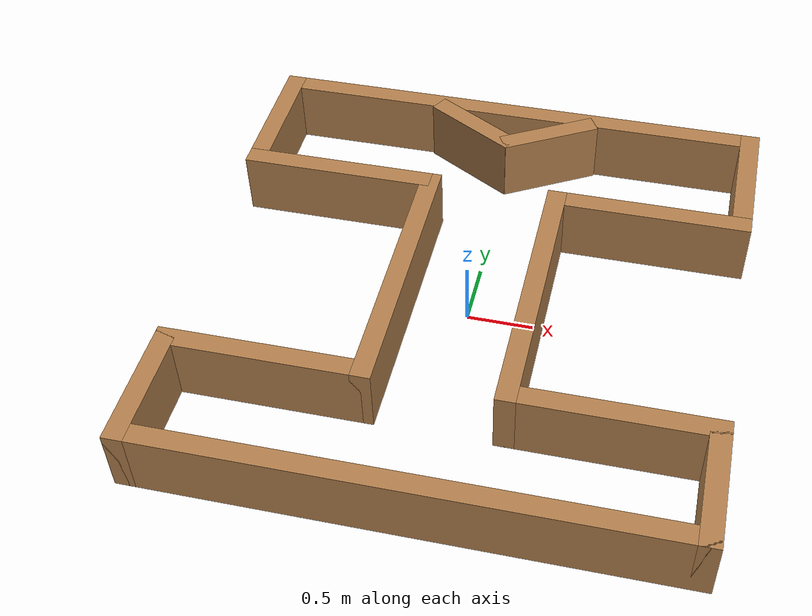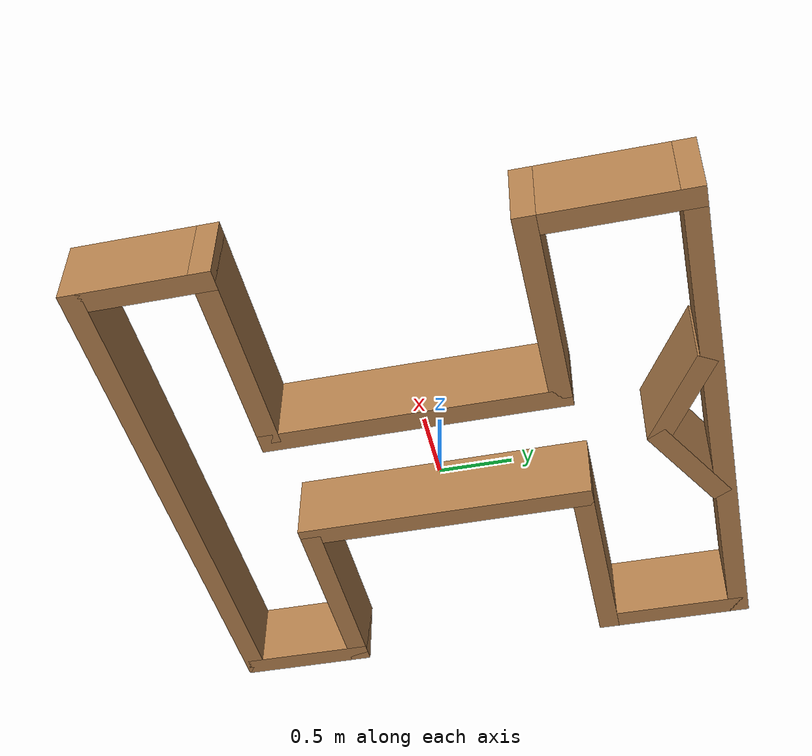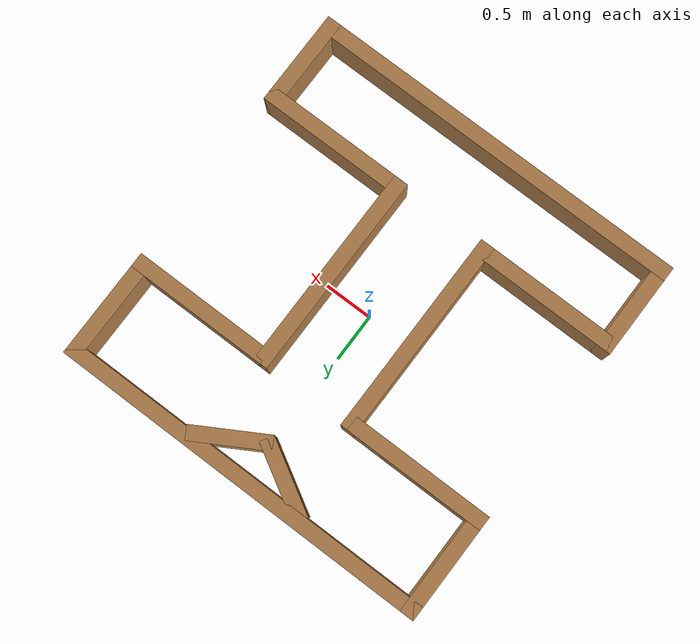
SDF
<?xml version='1.0'?>
<sdf version='1.6'>
  <model name='left_right_turn'>
    <pose frame=''>0 0 0 0 -0 0</pose>
    <link name='Wall_0'>
      <collision name='Wall_0_Collision'>
        <geometry>
          <box>
            <size>4 0.15 0.5</size>
          </box>
        </geometry>
        <pose frame=''>0 0 0.25 0 -0 0</pose>
      </collision>
      <visual name='Wall_0_Visual'>
        <pose frame=''>0 0 0.25 0 -0 0</pose>
        <geometry>
          <box>
            <size>4 0.15 0.5</size>
          </box>
        </geometry>
        <material>
          <script>
            <uri>file://media/materials/scripts/gazebo.material</uri>
            <name>Gazebo/Wood</name>
          </script>
          <ambient>1 1 1 1</ambient>
        </material>
      </visual>
      <pose frame=''>0 1.925 0 0 -0 0</pose>
    </link>
    <link name='Wall_2'>
      <collision name='Wall_2_Collision'>
        <geometry>
          <box>
            <size>1 0.15 0.5</size>
          </box>
        </geometry>
        <pose frame=''>0 0 0.25 0 -0 0</pose>
      </collision>
      <visual name='Wall_2_Visual'>
        <pose frame=''>0 0 0.25 0 -0 0</pose>
        <geometry>
          <box>
            <size>1 0.15 0.5</size>
          </box>
        </geometry>
        <material>
          <script>
            <uri>file://media/materials/scripts/gazebo.material</uri>
            <name>Gazebo/Wood</name>
          </script>
          <ambient>1 1 1 1</ambient>
        </material>
      </visual>
      <pose frame=''>-1.925 1.5 0 0 0 -1.5708</pose>
    </link>
    <link name='Wall_3'>
      <collision name='Wall_3_Collision'>
        <geometry>
          <box>
            <size>4 0.15 0.5</size>
          </box>
        </geometry>
        <pose frame=''>0 0 0.25 0 -0 0</pose>
      </collision>
      <visual name='Wall_3_Visual'>
        <pose frame=''>0 0 0.25 0 -0 0</pose>
        <geometry>
          <box>
            <size>4 0.15 0.5</size>
          </box>
        </geometry>
        <material>
          <script>
            <uri>file://media/materials/scripts/gazebo.material</uri>
            <name>Gazebo/Wood</name>
          </script>
          <ambient>1 1 1 1</ambient>
        </material>
      </visual>
      <pose frame=''>0 -1.925 0 0 -0 0</pose>
    </link>
    <link name='Wall_4'>
      <collision name='Wall_4_Collision'>
        <geometry>
          <box>
            <size>1 0.15 0.5</size>
          </box>
        </geometry>
        <pose frame=''>0 0 0.25 0 -0 0</pose>
      </collision>
      <visual name='Wall_4_Visual'>
        <pose frame=''>0 0 0.25 0 -0 0</pose>
        <geometry>
          <box>
            <size>1 0.15 0.5</size>
          </box>
        </geometry>
        <material>
          <script>
            <uri>file://media/materials/scripts/gazebo.material</uri>
            <name>Gazebo/Wood</name>
          </script>
          <ambient>1 1 1 1</ambient>
        </material>
      </visual>
      <pose frame=''>1.925 1.5 0 0 -0 1.5708</pose>
    </link>
    <link name='Wall_5'>
      <collision name='Wall_5_Collision'>
        <geometry>
          <box>
            <size>1 0.15 0.5</size>
          </box>
        </geometry>
        <pose frame=''>0 0 0.25 0 -0 0</pose>
      </collision>
      <visual name='Wall_5_Visual'>
        <pose frame=''>0 0 0.25 0 -0 0</pose>
        <geometry>
          <box>
            <size>1 0.15 0.5</size>
          </box>
        </geometry>
        <material>
          <script>
            <uri>file://media/materials/scripts/gazebo.material</uri>
            <name>Gazebo/Wood</name>
          </script>
          <ambient>1 1 1 1</ambient>
        </material>
      </visual>
      <pose frame=''>-1.925 -1.5 0 0 0 -1.5708</pose>
    </link>
    <link name='Wall_6'>
      <collision name='Wall_6_Collision'>
        <geometry>
          <box>
            <size>1 0.15 0.5</size>
          </box>
        </geometry>
        <pose frame=''>0 0 0.25 0 -0 0</pose>
      </collision>
      <visual name='Wall_6_Visual'>
        <pose frame=''>0 0 0.25 0 -0 0</pose>
        <geometry>
          <box>
            <size>1 0.15 0.5</size>
          </box>
        </geometry>
        <material>
          <script>
            <uri>file://media/materials/scripts/gazebo.material</uri>
            <name>Gazebo/Wood</name>
          </script>
          <ambient>1 1 1 1</ambient>
        </material>
      </visual>
      <pose frame=''>1.925 -1.5 0 0 -0 1.5708</pose>
    </link>
    <link name='Wall_7'>
      <collision name='Wall_7_Collision'>
        <geometry>
          <box>
            <size>1.5 0.15 0.5</size>
          </box>
        </geometry>
        <pose frame=''>0 0 0.25 0 -0 0</pose>
      </collision>
      <visual name='Wall_7_Visual'>
        <pose frame=''>0 0 0.25 0 -0 0</pose>
        <geometry>
          <box>
            <size>1.5 0.15 0.5</size>
          </box>
        </geometry>
        <material>
          <script>
            <uri>file://media/materials/scripts/gazebo.material</uri>
            <name>Gazebo/Wood</name>
          </script>
          <ambient>1 1 1 1</ambient>
        </material>
      </visual>
      <pose frame=''>-1.25 0.925 0 0 -0 0</pose>
    </link>
    <link name='Wall_8'>
      <collision name='Wall_8_Collision'>
        <geometry>
          <box>
            <size>1.5 0.15 0.5</size>
          </box>
        </geometry>
        <pose frame=''>0 0 0.25 0 -0 0</pose>
      </collision>
      <visual name='Wall_8_Visual'>
        <pose frame=''>0 0 0.25 0 -0 0</pose>
        <geometry>
          <box>
            <size>1.5 0.15 0.5</size>
          </box>
        </geometry>
        <material>
          <script>
            <uri>file://media/materials/scripts/gazebo.material</uri>
            <name>Gazebo/Wood</name>
          </script>
          <ambient>1 1 1 1</ambient>
        </material>
      </visual>
      <pose frame=''>1.25 0.925 0 0 -0 0</pose>
    </link>
    <link name='Wall_9'>
      <collision name='Wall_9_Collision'>
        <geometry>
          <box>
            <size>1.5 0.15 0.5</size>
          </box>
        </geometry>
        <pose frame=''>0 0 0.25 0 -0 0</pose>
      </collision>
      <visual name='Wall_9_Visual'>
        <pose frame=''>0 0 0.25 0 -0 0</pose>
        <geometry>
          <box>
            <size>1.5 0.15 0.5</size>
          </box>
        </geometry>
        <material>
          <script>
            <uri>file://media/materials/scripts/gazebo.material</uri>
            <name>Gazebo/Wood</name>
          </script>
          <ambient>1 1 1 1</ambient>
        </material>
      </visual>
      <pose frame=''>-1.25 -1.075 0 0 -0 0</pose>
    </link>
    <link name='Wall_10'>
      <collision name='Wall_10_Collision'>
        <geometry>
          <box>
            <size>1.5 0.15 0.5</size>
          </box>
        </geometry>
        <pose frame=''>0 0 0.25 0 -0 0</pose>
      </collision>
      <visual name='Wall_10_Visual'>
        <pose frame=''>0 0 0.25 0 -0 0</pose>
        <geometry>
          <box>
            <size>1.5 0.15 0.5</size>
          </box>
        </geometry>
        <material>
          <script>
            <uri>file://media/materials/scripts/gazebo.material</uri>
            <name>Gazebo/Wood</name>
          </script>
          <ambient>1 1 1 1</ambient>
        </material>
      </visual>
      <pose frame=''>1.25 -1.075 0 0 -0 0</pose>
    </link>
    <link name='Wall_11'>
      <collision name='Wall_11_Collision'>
        <geometry>
          <box>
            <size>2.15 0.15 0.5</size>
          </box>
        </geometry>
        <pose frame=''>0 0 0.25 0 -0 0</pose>
      </collision>
      <visual name='Wall_11_Visual'>
        <pose frame=''>0 0 0.25 0 -0 0</pose>
        <geometry>
          <box>
            <size>2.15 0.15 0.5</size>
          </box>
        </geometry>
        <material>
          <script>
            <uri>file://media/materials/scripts/gazebo.material</uri>
            <name>Gazebo/Wood</name>
          </script>
          <ambient>1 1 1 1</ambient>
        </material>
      </visual>
      <pose frame=''>-0.5 -0.075 0 0 0 -1.5708</pose>
    </link>
    <link name='Wall_12'>
      <collision name='Wall_12_Collision'>
        <geometry>
          <box>
            <size>2.15 0.15 0.5</size>
          </box>
        </geometry>
        <pose frame=''>0 0 0.25 0 -0 0</pose>
      </collision>
      <visual name='Wall_12_Visual'>
        <pose frame=''>0 0 0.25 0 -0 0</pose>
        <geometry>
          <box>
            <size>2.15 0.15 0.5</size>
          </box>
        </geometry>
        <material>
          <script>
            <uri>file://media/materials/scripts/gazebo.material</uri>
            <name>Gazebo/Wood</name>
          </script>
          <ambient>1 1 1 1</ambient>
        </material>
      </visual>
      <pose frame=''>0.5 -0.075 0 0 0 -1.5708</pose>
    </link>
    <link name='Wall_13'>
      <collision name='Wall_13_Collision'>
        <geometry>
          <box>
            <size>0.8 0.15 0.5</size>
          </box>
        </geometry>
        <pose frame=''>0 0 0.25 0 -0 0</pose>
      </collision>
      <visual name='Wall_13_Visual'>
        <pose frame=''>0 0 0.25 0 -0 0</pose>
        <geometry>
          <box>
            <size>0.8 0.15 0.5</size>
          </box>
        </geometry>
        <material>
          <script>
            <uri>file://media/materials/scripts/gazebo.material</uri>
            <name>Gazebo/Wood</name>
          </script>
          <ambient>1 1 1 1</ambient>
        </material>
      </visual>
      <pose frame=''>0.31 1.7 0 0 0 0.5236</pose>
    </link>
    <link name='Wall_14'>
      <collision name='Wall_14_Collision'>
        <geometry>
          <box>
            <size>0.8 0.15 0.5</size>
          </box>
        </geometry>
        <pose frame=''>0 0 0.25 0 -0 0</pose>
      </collision>
      <visual name='Wall_14_Visual'>
        <pose frame=''>0 0 0.25 0 -0 0</pose>
        <geometry>
          <box>
            <size>0.8 0.15 0.5</size>
          </box>
        </geometry>
        <material>
          <script>
            <uri>file://media/materials/scripts/gazebo.material</uri>
            <name>Gazebo/Wood</name>
          </script>
          <ambient>1 1 1 1</ambient>
        </material>
      </visual>
      <pose frame=''>-0.31 1.7 0 0 0 2.6179</pose>
    </link>
    <static>1</static>
  </model>
</sdf>
